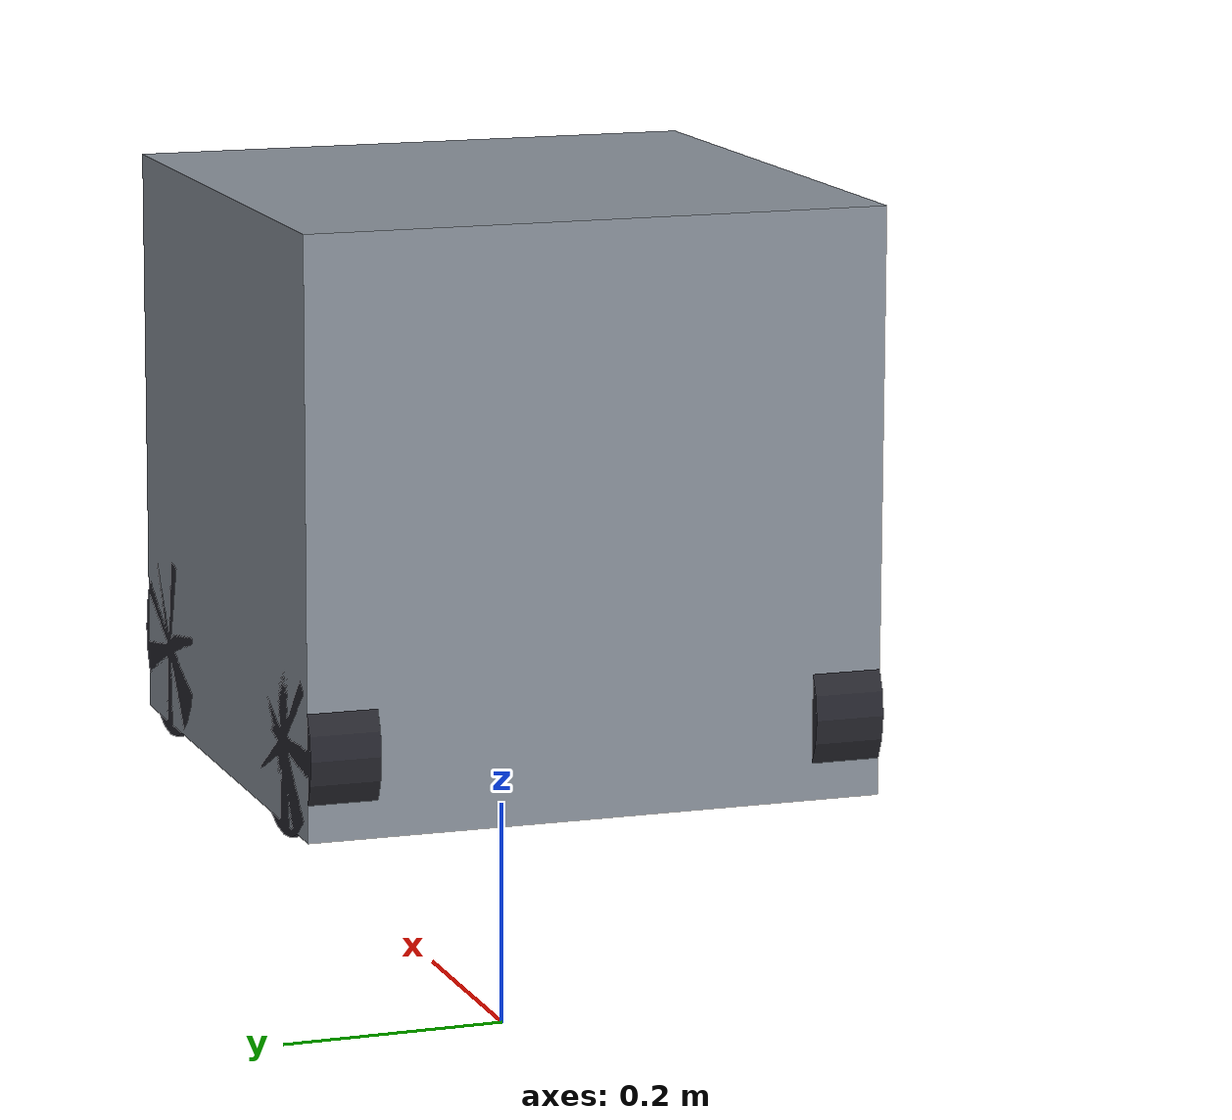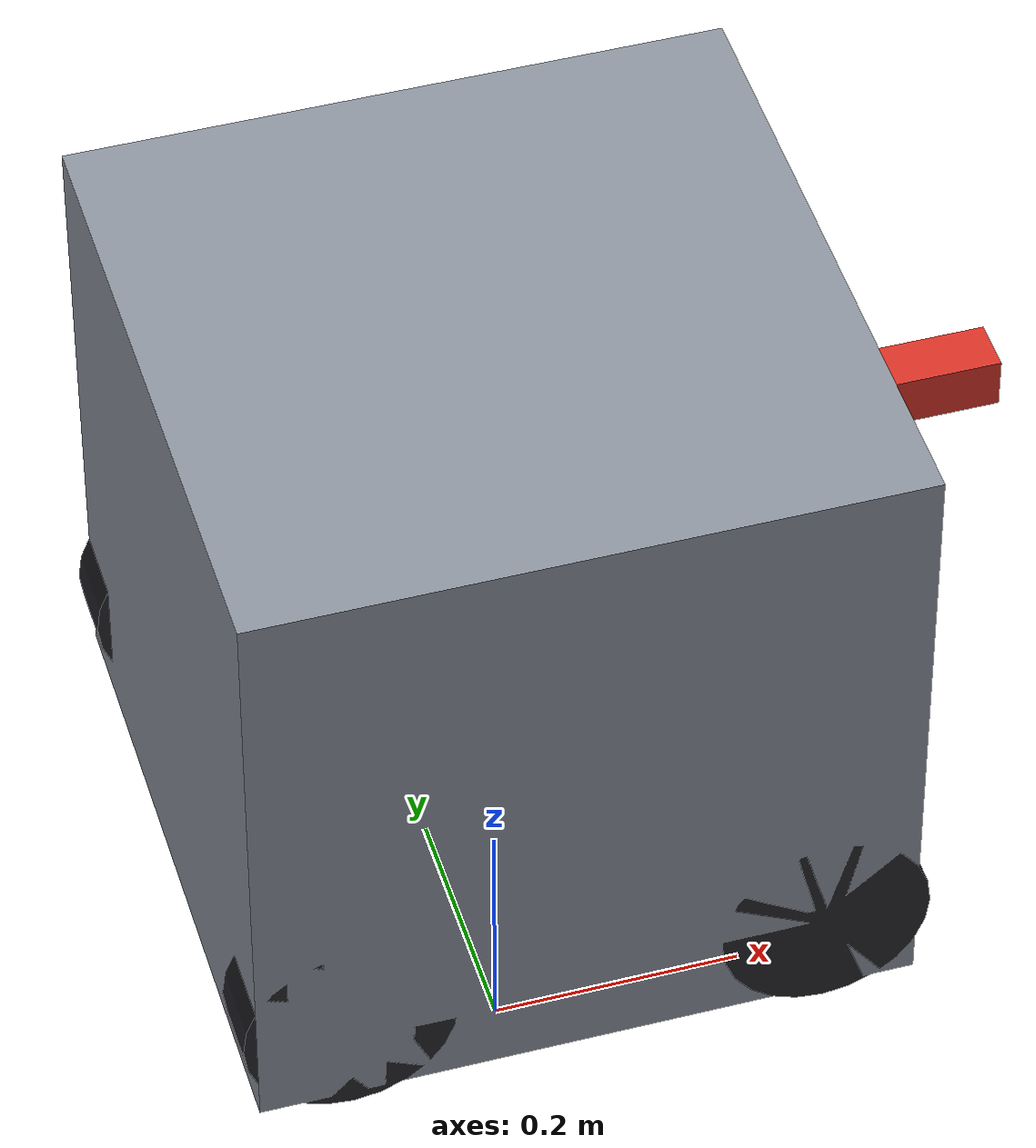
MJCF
<mujoco model="planar_cart_planar">
  <option timestep="0.002" integrator="RK4" gravity="0 0 -9.81"/>

  <default>
    <geom contype="1" conaffinity="1" friction="0.8 0.02 0.01"/>
  </default>

  <worldbody>
    <body name="chassis" pos="0 0 0.5">
      <joint name="slide_x" type="slide" axis="1 0 0" damping="0.2"/>
      <joint name="slide_y" type="slide" axis="0 1 0" damping="0.2"/>
      <joint name="yaw_z" type="hinge" axis="0 0 1" damping="0.05"/>
      <geom name="chassis_box" type="box" size="0.25 0.25 0.25"
            mass="10.0" rgba="0.55 0.58 0.62 1"/>
      <geom name="wheel_fl" type="cylinder" size="0.08 0.03" pos="0.18 0.22 -0.18" quat="0.7071 0.7071 0 0" mass="0" contype="0" conaffinity="0" rgba="0.15 0.15 0.18 1"/>
      <geom name="wheel_fr" type="cylinder" size="0.08 0.03" pos="0.18 -0.22 -0.18" quat="0.7071 0.7071 0 0" mass="0" contype="0" conaffinity="0" rgba="0.15 0.15 0.18 1"/>
      <geom name="wheel_rl" type="cylinder" size="0.08 0.03" pos="-0.18 0.22 -0.18" quat="0.7071 0.7071 0 0" mass="0" contype="0" conaffinity="0" rgba="0.15 0.15 0.18 1"/>
      <geom name="wheel_rr" type="cylinder" size="0.08 0.03" pos="-0.18 -0.22 -0.18" quat="0.7071 0.7071 0 0" mass="0" contype="0" conaffinity="0" rgba="0.15 0.15 0.18 1"/>
      <geom name="nose" type="box" size="0.08 0.02 0.02" pos="0.3 0.0 0.1" mass="0" contype="0" conaffinity="0" rgba="0.85 0.2 0.15 1"/>
    </body>
  </worldbody>

  <actuator>
    <velocity name="vx" joint="slide_x" kv="120" forcerange="-400 400" ctrlrange="-3 3"/>
    <velocity name="vy" joint="slide_y" kv="120" forcerange="-400 400" ctrlrange="-3 3"/>
    <velocity name="yaw_rate" joint="yaw_z" kv="60" forcerange="-200 200" ctrlrange="-6 6"/>
  </actuator>
</mujoco>
